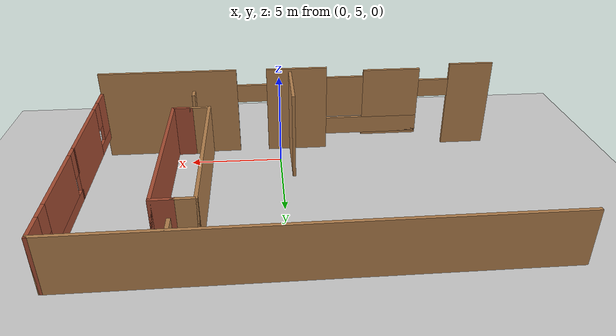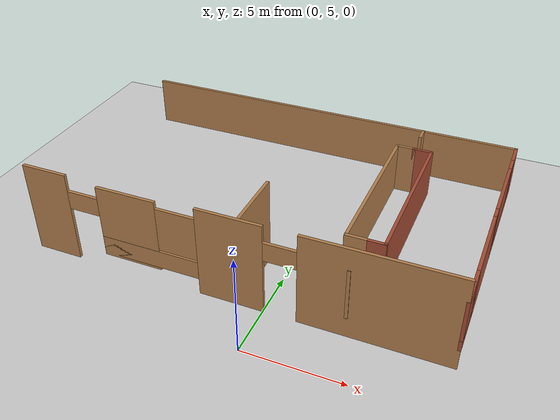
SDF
<sdf version="1.7">
 <world name="default">
  <model name="ground_plane">
   <static>1</static>
   <link name="link">
    <collision name="collision">
     <geometry><plane><normal>0 0 1</normal><size>100 100</size></plane></geometry>
     <surface><friction><ode><mu>100</mu><mu2>50</mu2></ode></friction></surface>
    </collision>
    <visual name="visual">
     <cast_shadows>0</cast_shadows>
     <geometry><plane><normal>0 0 1</normal><size>100 100</size></plane></geometry>
     <material>
      <script><uri>file://media/materials/scripts/gazebo.material</uri><name>Gazebo/Grey</name></script>
     </material>
    </visual>
   </link>
  </model>
  <model name="cafe_clone">
   <link name="Wall_14">
    <pose>9.93178 -2.98994 0 0 0 -1.56964</pose>
    <visual name="Wall_14_Visual_0">
     <pose>-0.989557 0 1.25 0 -0 0</pose>
     <geometry><box><size>3.98617 0.15 2.5</size></box></geometry>
     <material>
      <script><uri>file://media/materials/scripts/gazebo.material</uri><name>Gazebo/Bricks</name></script>
      <ambient>1 1 1 1</ambient>
      <shader type="pixel"/>
     </material>
     <meta><layer>0</layer></meta>
    </visual>
    <visual name="Wall_14_Visual_1">
     <pose>1.99308 0 0.25 0 -0 0</pose>
     <geometry><box><size>1.97911 0.15 0.5</size></box></geometry>
     <material>
      <script><uri>file://media/materials/scripts/gazebo.material</uri><name>Gazebo/Bricks</name></script>
      <ambient>1 1 1 1</ambient>
      <shader type="pixel"/>
     </material>
     <meta><layer>0</layer></meta>
    </visual>
    <visual name="Wall_14_Visual_2">
     <pose>2.35186 0 1.5 0 -0 0</pose>
     <geometry><box><size>1.26156 0.15 2</size></box></geometry>
     <material>
      <script><uri>file://media/materials/scripts/gazebo.material</uri><name>Gazebo/Bricks</name></script>
      <ambient>1 1 1 1</ambient>
      <shader type="pixel"/>
     </material>
     <meta><layer>0</layer></meta>
    </visual>
    <visual name="Wall_14_Visual_3">
     <pose>1.36231 0 1.9 0 -0 0</pose>
     <geometry><box><size>0.717555 0.15 1.2</size></box></geometry>
     <material>
      <script><uri>file://media/materials/scripts/gazebo.material</uri><name>Gazebo/Bricks</name></script>
      <ambient>1 1 1 1</ambient>
      <shader type="pixel"/>
     </material>
     <meta><layer>0</layer></meta>
    </visual>
    <collision name="Wall_14_Collision_0">
     <pose>-0.989557 0 1.25 0 -0 0</pose>
     <geometry><box><size>3.98617 0.15 2.5</size></box></geometry>
     <surface>
      <friction>
       <ode><mu>1</mu><mu2>1</mu2><fdir1>0 0 0</fdir1><slip1>0</slip1><slip2>0</slip2></ode>
       <torsional>
        <coefficient>1</coefficient>
        <patch_radius>0</patch_radius>
        <surface_radius>0</surface_radius>
        <use_patch_radius>1</use_patch_radius>
        <ode><slip>0</slip></ode>
       </torsional>
      </friction>
      <bounce><restitution_coefficient>0</restitution_coefficient><threshold>1e+06</threshold></bounce>
      <contact>
       <collide_without_contact>0</collide_without_contact>
       <collide_without_contact_bitmask>1</collide_without_contact_bitmask>
       <collide_bitmask>1</collide_bitmask>
       <ode>
        <soft_cfm>0</soft_cfm>
        <soft_erp>0.2</soft_erp>
        <kp>1e+13</kp>
        <kd>1</kd>
        <max_vel>0.01</max_vel>
        <min_depth>0</min_depth>
       </ode>
       <bullet>
        <split_impulse>1</split_impulse>
        <split_impulse_penetration_threshold>-0.01</split_impulse_penetration_threshold>
        <soft_cfm>0</soft_cfm>
        <soft_erp>0.2</soft_erp>
        <kp>1e+13</kp>
        <kd>1</kd>
       </bullet>
      </contact>
     </surface>
    </collision>
    <collision name="Wall_14_Collision_1">
     <pose>1.99308 0 0.25 0 -0 0</pose>
     <geometry><box><size>1.97911 0.15 0.5</size></box></geometry>
     <surface>
      <friction>
       <ode><mu>1</mu><mu2>1</mu2><fdir1>0 0 0</fdir1><slip1>0</slip1><slip2>0</slip2></ode>
       <torsional>
        <coefficient>1</coefficient>
        <patch_radius>0</patch_radius>
        <surface_radius>0</surface_radius>
        <use_patch_radius>1</use_patch_radius>
        <ode><slip>0</slip></ode>
       </torsional>
      </friction>
      <bounce><restitution_coefficient>0</restitution_coefficient><threshold>1e+06</threshold></bounce>
      <contact>
       <collide_without_contact>0</collide_without_contact>
       <collide_without_contact_bitmask>1</collide_without_contact_bitmask>
       <collide_bitmask>1</collide_bitmask>
       <ode>
        <soft_cfm>0</soft_cfm>
        <soft_erp>0.2</soft_erp>
        <kp>1e+13</kp>
        <kd>1</kd>
        <max_vel>0.01</max_vel>
        <min_depth>0</min_depth>
       </ode>
       <bullet>
        <split_impulse>1</split_impulse>
        <split_impulse_penetration_threshold>-0.01</split_impulse_penetration_threshold>
        <soft_cfm>0</soft_cfm>
        <soft_erp>0.2</soft_erp>
        <kp>1e+13</kp>
        <kd>1</kd>
       </bullet>
      </contact>
     </surface>
    </collision>
    <collision name="Wall_14_Collision_2">
     <pose>2.35186 0 1.5 0 -0 0</pose>
     <geometry><box><size>1.26156 0.15 2</size></box></geometry>
     <surface>
      <friction>
       <ode><mu>1</mu><mu2>1</mu2><fdir1>0 0 0</fdir1><slip1>0</slip1><slip2>0</slip2></ode>
       <torsional>
        <coefficient>1</coefficient>
        <patch_radius>0</patch_radius>
        <surface_radius>0</surface_radius>
        <use_patch_radius>1</use_patch_radius>
        <ode><slip>0</slip></ode>
       </torsional>
      </friction>
      <bounce><restitution_coefficient>0</restitution_coefficient><threshold>1e+06</threshold></bounce>
      <contact>
       <collide_without_contact>0</collide_without_contact>
       <collide_without_contact_bitmask>1</collide_without_contact_bitmask>
       <collide_bitmask>1</collide_bitmask>
       <ode>
        <soft_cfm>0</soft_cfm>
        <soft_erp>0.2</soft_erp>
        <kp>1e+13</kp>
        <kd>1</kd>
        <max_vel>0.01</max_vel>
        <min_depth>0</min_depth>
       </ode>
       <bullet>
        <split_impulse>1</split_impulse>
        <split_impulse_penetration_threshold>-0.01</split_impulse_penetration_threshold>
        <soft_cfm>0</soft_cfm>
        <soft_erp>0.2</soft_erp>
        <kp>1e+13</kp>
        <kd>1</kd>
       </bullet>
      </contact>
     </surface>
    </collision>
    <collision name="Wall_14_Collision_3">
     <pose>1.36231 0 1.9 0 -0 0</pose>
     <geometry><box><size>0.717555 0.15 1.2</size></box></geometry>
     <surface>
      <friction>
       <ode><mu>1</mu><mu2>1</mu2><fdir1>0 0 0</fdir1><slip1>0</slip1><slip2>0</slip2></ode>
       <torsional>
        <coefficient>1</coefficient>
        <patch_radius>0</patch_radius>
        <surface_radius>0</surface_radius>
        <use_patch_radius>1</use_patch_radius>
        <ode><slip>0</slip></ode>
       </torsional>
      </friction>
      <bounce><restitution_coefficient>0</restitution_coefficient><threshold>1e+06</threshold></bounce>
      <contact>
       <collide_without_contact>0</collide_without_contact>
       <collide_without_contact_bitmask>1</collide_without_contact_bitmask>
       <collide_bitmask>1</collide_bitmask>
       <ode>
        <soft_cfm>0</soft_cfm>
        <soft_erp>0.2</soft_erp>
        <kp>1e+13</kp>
        <kd>1</kd>
        <max_vel>0.01</max_vel>
        <min_depth>0</min_depth>
       </ode>
       <bullet>
        <split_impulse>1</split_impulse>
        <split_impulse_penetration_threshold>-0.01</split_impulse_penetration_threshold>
        <soft_cfm>0</soft_cfm>
        <soft_erp>0.2</soft_erp>
        <kp>1e+13</kp>
        <kd>1</kd>
       </bullet>
      </contact>
     </surface>
    </collision>
   </link>
   <link name="Wall_15">
    <pose>-0.010231 -5.89748 0 0 -0 3.14159</pose>
    <inertial>
     <inertia><ixx>0</ixx><ixy>0</ixy><ixz>0</ixz><iyy>0</iyy><iyz>0</iyz><izz>0</izz></inertia>
     <mass>0</mass>
    </inertial>
    <visual name="Wall_15_Visual_1">
     <pose>-0.152511 0 1.25 0 -0 0</pose>
     <geometry><box><size>3.07169 0.15 4.54997</size></box></geometry>
     <material>
      <script><uri>file://media/materials/scripts/gazebo.material</uri><name>Gazebo/Wood</name></script>
      <ambient>1 1 1 1</ambient>
      <shader type="pixel"/>
     </material>
     <meta><layer>0</layer></meta>
    </visual>
    <visual name="Wall_15_Visual_0">
     <pose>-6.59523 0 1.25 0 -0 0</pose>
     <geometry><box><size>6.80954 0.15 4.54997</size></box></geometry>
     <material>
      <script><uri>file://media/materials/scripts/gazebo.material</uri><name>Gazebo/Wood</name></script>
      <ambient>1 1 1 1</ambient>
      <shader type="pixel"/>
     </material>
     <meta><layer>0</layer></meta>
    </visual>
    <visual name="Wall_15_Visual_2">
     <pose>8.87248 0 1.25 0 -0 0</pose>
     <geometry><box><size>2.25504 0.15 4.54997</size></box></geometry>
     <material>
      <script><uri>file://media/materials/scripts/gazebo.material</uri><name>Gazebo/Wood</name></script>
      <ambient>1 1 1 1</ambient>
      <shader type="pixel"/>
     </material>
     <meta><layer>0</layer></meta>
    </visual>
    <visual name="Wall_15_Visual_3">
     <pose>3.7864 0 0.25 0 -0 0</pose>
     <geometry><box><size>4.80612 0.15 0.909994</size></box></geometry>
     <material>
      <script><uri>file://media/materials/scripts/gazebo.material</uri><name>Gazebo/Wood</name></script>
      <ambient>1 1 1 1</ambient>
      <shader type="pixel"/>
     </material>
     <meta><layer>0</layer></meta>
    </visual>
    <visual name="Wall_15_Visual_4">
     <pose>4.72994 0 1.5 0 -0 0</pose>
     <geometry><box><size>2.91902 0.15 3.63997</size></box></geometry>
     <material>
      <script><uri>file://media/materials/scripts/gazebo.material</uri><name>Gazebo/Wood</name></script>
      <ambient>1 1 1 1</ambient>
      <shader type="pixel"/>
     </material>
     <meta><layer>0</layer></meta>
    </visual>
    <visual name="Wall_15_Visual_5">
     <pose>2.32688 0 1.9 0 -0 0</pose>
     <geometry><box><size>1.88709 0.15 2.18398</size></box></geometry>
     <material>
      <script><uri>file://media/materials/scripts/gazebo.material</uri><name>Gazebo/Wood</name></script>
      <ambient>1 1 1 1</ambient>
      <shader type="pixel"/>
     </material>
     <meta><layer>0</layer></meta>
    </visual>
    <visual name="Wall_15_Visual_6">
     <pose>-2.43941 0 2.25 0 -0 0</pose>
     <geometry><box><size>1.5021 0.15 0.909994</size></box></geometry>
     <material>
      <script><uri>file://media/materials/scripts/gazebo.material</uri><name>Gazebo/Wood</name></script>
      <ambient>1 1 1 1</ambient>
      <shader type="pixel"/>
     </material>
     <meta><layer>0</layer></meta>
    </visual>
    <visual name="Wall_15_Visual_7">
     <pose>6.9672 0 2.25 0 -0 0</pose>
     <geometry><box><size>1.5555 0.15 0.909994</size></box></geometry>
     <material>
      <script><uri>file://media/materials/scripts/gazebo.material</uri><name>Gazebo/Wood</name></script>
      <ambient>1 1 1 1</ambient>
      <shader type="pixel"/>
     </material>
     <meta><layer>0</layer></meta>
    </visual>
    <collision name="Wall_15_Collision_0">
     <pose>-6.59523 0 1.25 0 -0 0</pose>
     <geometry><box><size>6.80954 0.15 4.54997</size></box></geometry>
     <surface>
      <friction>
       <ode><mu>1</mu><mu2>1</mu2><fdir1>0 0 0</fdir1><slip1>0</slip1><slip2>0</slip2></ode>
       <torsional>
        <coefficient>1</coefficient>
        <patch_radius>0</patch_radius>
        <surface_radius>0</surface_radius>
        <use_patch_radius>1</use_patch_radius>
        <ode><slip>0</slip></ode>
       </torsional>
      </friction>
      <bounce><restitution_coefficient>0</restitution_coefficient><threshold>1e+06</threshold></bounce>
      <contact>
       <collide_without_contact>0</collide_without_contact>
       <collide_without_contact_bitmask>1</collide_without_contact_bitmask>
       <collide_bitmask>1</collide_bitmask>
       <ode>
        <soft_cfm>0</soft_cfm>
        <soft_erp>0.2</soft_erp>
        <kp>1e+13</kp>
        <kd>1</kd>
        <max_vel>0.01</max_vel>
        <min_depth>0</min_depth>
       </ode>
       <bullet>
        <split_impulse>1</split_impulse>
        <split_impulse_penetration_threshold>-0.01</split_impulse_penetration_threshold>
        <soft_cfm>0</soft_cfm>
        <soft_erp>0.2</soft_erp>
        <kp>1e+13</kp>
        <kd>1</kd>
       </bullet>
      </contact>
     </surface>
    </collision>
    <collision name="Wall_15_Collision_1">
     <pose>-0.152511 0 1.25 0 -0 0</pose>
     <geometry><box><size>3.07169 0.15 4.54997</size></box></geometry>
     <surface>
      <friction>
       <ode><mu>1</mu><mu2>1</mu2><fdir1>0 0 0</fdir1><slip1>0</slip1><slip2>0</slip2></ode>
       <torsional>
        <coefficient>1</coefficient>
        <patch_radius>0</patch_radius>
        <surface_radius>0</surface_radius>
        <use_patch_radius>1</use_patch_radius>
        <ode><slip>0</slip></ode>
       </torsional>
      </friction>
      <bounce><restitution_coefficient>0</restitution_coefficient><threshold>1e+06</threshold></bounce>
      <contact>
       <collide_without_contact>0</collide_without_contact>
       <collide_without_contact_bitmask>1</collide_without_contact_bitmask>
       <collide_bitmask>1</collide_bitmask>
       <ode>
        <soft_cfm>0</soft_cfm>
        <soft_erp>0.2</soft_erp>
        <kp>1e+13</kp>
        <kd>1</kd>
        <max_vel>0.01</max_vel>
        <min_depth>0</min_depth>
       </ode>
       <bullet>
        <split_impulse>1</split_impulse>
        <split_impulse_penetration_threshold>-0.01</split_impulse_penetration_threshold>
        <soft_cfm>0</soft_cfm>
        <soft_erp>0.2</soft_erp>
        <kp>1e+13</kp>
        <kd>1</kd>
       </bullet>
      </contact>
     </surface>
    </collision>
    <collision name="Wall_15_Collision_2">
     <pose>8.87248 0 1.25 0 -0 0</pose>
     <geometry><box><size>2.25504 0.15 4.54997</size></box></geometry>
     <surface>
      <friction>
       <ode><mu>1</mu><mu2>1</mu2><fdir1>0 0 0</fdir1><slip1>0</slip1><slip2>0</slip2></ode>
       <torsional>
        <coefficient>1</coefficient>
        <patch_radius>0</patch_radius>
        <surface_radius>0</surface_radius>
        <use_patch_radius>1</use_patch_radius>
        <ode><slip>0</slip></ode>
       </torsional>
      </friction>
      <bounce><restitution_coefficient>0</restitution_coefficient><threshold>1e+06</threshold></bounce>
      <contact>
       <collide_without_contact>0</collide_without_contact>
       <collide_without_contact_bitmask>1</collide_without_contact_bitmask>
       <collide_bitmask>1</collide_bitmask>
       <ode>
        <soft_cfm>0</soft_cfm>
        <soft_erp>0.2</soft_erp>
        <kp>1e+13</kp>
        <kd>1</kd>
        <max_vel>0.01</max_vel>
        <min_depth>0</min_depth>
       </ode>
       <bullet>
        <split_impulse>1</split_impulse>
        <split_impulse_penetration_threshold>-0.01</split_impulse_penetration_threshold>
        <soft_cfm>0</soft_cfm>
        <soft_erp>0.2</soft_erp>
        <kp>1e+13</kp>
        <kd>1</kd>
       </bullet>
      </contact>
     </surface>
    </collision>
    <collision name="Wall_15_Collision_3">
     <pose>3.7864 0 0.25 0 -0 0</pose>
     <geometry><box><size>4.80612 0.15 0.909994</size></box></geometry>
     <surface>
      <friction>
       <ode><mu>1</mu><mu2>1</mu2><fdir1>0 0 0</fdir1><slip1>0</slip1><slip2>0</slip2></ode>
       <torsional>
        <coefficient>1</coefficient>
        <patch_radius>0</patch_radius>
        <surface_radius>0</surface_radius>
        <use_patch_radius>1</use_patch_radius>
        <ode><slip>0</slip></ode>
       </torsional>
      </friction>
      <bounce><restitution_coefficient>0</restitution_coefficient><threshold>1e+06</threshold></bounce>
      <contact>
       <collide_without_contact>0</collide_without_contact>
       <collide_without_contact_bitmask>1</collide_without_contact_bitmask>
       <collide_bitmask>1</collide_bitmask>
       <ode>
        <soft_cfm>0</soft_cfm>
        <soft_erp>0.2</soft_erp>
        <kp>1e+13</kp>
        <kd>1</kd>
        <max_vel>0.01</max_vel>
        <min_depth>0</min_depth>
       </ode>
       <bullet>
        <split_impulse>1</split_impulse>
        <split_impulse_penetration_threshold>-0.01</split_impulse_penetration_threshold>
        <soft_cfm>0</soft_cfm>
        <soft_erp>0.2</soft_erp>
        <kp>1e+13</kp>
        <kd>1</kd>
       </bullet>
      </contact>
     </surface>
    </collision>
    <collision name="Wall_15_Collision_4">
     <pose>4.72994 0 1.5 0 -0 0</pose>
     <geometry><box><size>2.91902 0.15 3.63997</size></box></geometry>
     <surface>
      <friction>
       <ode><mu>1</mu><mu2>1</mu2><fdir1>0 0 0</fdir1><slip1>0</slip1><slip2>0</slip2></ode>
       <torsional>
        <coefficient>1</coefficient>
        <patch_radius>0</patch_radius>
        <surface_radius>0</surface_radius>
        <use_patch_radius>1</use_patch_radius>
        <ode><slip>0</slip></ode>
       </torsional>
      </friction>
      <bounce><restitution_coefficient>0</restitution_coefficient><threshold>1e+06</threshold></bounce>
      <contact>
       <collide_without_contact>0</collide_without_contact>
       <collide_without_contact_bitmask>1</collide_without_contact_bitmask>
       <collide_bitmask>1</collide_bitmask>
       <ode>
        <soft_cfm>0</soft_cfm>
        <soft_erp>0.2</soft_erp>
        <kp>1e+13</kp>
        <kd>1</kd>
        <max_vel>0.01</max_vel>
        <min_depth>0</min_depth>
       </ode>
       <bullet>
        <split_impulse>1</split_impulse>
        <split_impulse_penetration_threshold>-0.01</split_impulse_penetration_threshold>
        <soft_cfm>0</soft_cfm>
        <soft_erp>0.2</soft_erp>
        <kp>1e+13</kp>
        <kd>1</kd>
       </bullet>
      </contact>
     </surface>
    </collision>
    <collision name="Wall_15_Collision_5">
     <pose>2.32688 0 1.9 0 -0 0</pose>
     <geometry><box><size>1.88709 0.15 2.18398</size></box></geometry>
     <surface>
      <friction>
       <ode><mu>1</mu><mu2>1</mu2><fdir1>0 0 0</fdir1><slip1>0</slip1><slip2>0</slip2></ode>
       <torsional>
        <coefficient>1</coefficient>
        <patch_radius>0</patch_radius>
        <surface_radius>0</surface_radius>
        <use_patch_radius>1</use_patch_radius>
        <ode><slip>0</slip></ode>
       </torsional>
      </friction>
      <bounce><restitution_coefficient>0</restitution_coefficient><threshold>1e+06</threshold></bounce>
      <contact>
       <collide_without_contact>0</collide_without_contact>
       <collide_without_contact_bitmask>1</collide_without_contact_bitmask>
       <collide_bitmask>1</collide_bitmask>
       <ode>
        <soft_cfm>0</soft_cfm>
        <soft_erp>0.2</soft_erp>
        <kp>1e+13</kp>
        <kd>1</kd>
        <max_vel>0.01</max_vel>
        <min_depth>0</min_depth>
       </ode>
       <bullet>
        <split_impulse>1</split_impulse>
        <split_impulse_penetration_threshold>-0.01</split_impulse_penetration_threshold>
        <soft_cfm>0</soft_cfm>
        <soft_erp>0.2</soft_erp>
        <kp>1e+13</kp>
        <kd>1</kd>
       </bullet>
      </contact>
     </surface>
    </collision>
    <collision name="Wall_15_Collision_6">
     <pose>-2.43941 0 2.25 0 -0 0</pose>
     <geometry><box><size>1.5021 0.15 0.909994</size></box></geometry>
     <surface>
      <friction>
       <ode><mu>1</mu><mu2>1</mu2><fdir1>0 0 0</fdir1><slip1>0</slip1><slip2>0</slip2></ode>
       <torsional>
        <coefficient>1</coefficient>
        <patch_radius>0</patch_radius>
        <surface_radius>0</surface_radius>
        <use_patch_radius>1</use_patch_radius>
        <ode><slip>0</slip></ode>
       </torsional>
      </friction>
      <bounce><restitution_coefficient>0</restitution_coefficient><threshold>1e+06</threshold></bounce>
      <contact>
       <collide_without_contact>0</collide_without_contact>
       <collide_without_contact_bitmask>1</collide_without_contact_bitmask>
       <collide_bitmask>1</collide_bitmask>
       <ode>
        <soft_cfm>0</soft_cfm>
        <soft_erp>0.2</soft_erp>
        <kp>1e+13</kp>
        <kd>1</kd>
        <max_vel>0.01</max_vel>
        <min_depth>0</min_depth>
       </ode>
       <bullet>
        <split_impulse>1</split_impulse>
        <split_impulse_penetration_threshold>-0.01</split_impulse_penetration_threshold>
        <soft_cfm>0</soft_cfm>
        <soft_erp>0.2</soft_erp>
        <kp>1e+13</kp>
        <kd>1</kd>
       </bullet>
      </contact>
     </surface>
    </collision>
    <collision name="Wall_15_Collision_7">
     <pose>6.9672 0 2.25 0 -0 0</pose>
     <geometry><box><size>1.5555 0.15 0.909994</size></box></geometry>
     <surface>
      <friction>
       <ode><mu>1</mu><mu2>1</mu2><fdir1>0 0 0</fdir1><slip1>0</slip1><slip2>0</slip2></ode>
       <torsional>
        <coefficient>1</coefficient>
        <patch_radius>0</patch_radius>
        <surface_radius>0</surface_radius>
        <use_patch_radius>1</use_patch_radius>
        <ode><slip>0</slip></ode>
       </torsional>
      </friction>
      <bounce><restitution_coefficient>0</restitution_coefficient><threshold>1e+06</threshold></bounce>
      <contact>
       <collide_without_contact>0</collide_without_contact>
       <collide_without_contact_bitmask>1</collide_without_contact_bitmask>
       <collide_bitmask>1</collide_bitmask>
       <ode>
        <soft_cfm>0</soft_cfm>
        <soft_erp>0.2</soft_erp>
        <kp>1e+13</kp>
        <kd>1</kd>
        <max_vel>0.01</max_vel>
        <min_depth>0</min_depth>
       </ode>
       <bullet>
        <split_impulse>1</split_impulse>
        <split_impulse_penetration_threshold>-0.01</split_impulse_penetration_threshold>
        <soft_cfm>0</soft_cfm>
        <soft_erp>0.2</soft_erp>
        <kp>1e+13</kp>
        <kd>1</kd>
       </bullet>
      </contact>
     </surface>
    </collision>
   </link>
   <link name="Wall_17">
    <pose>0.003408 5.91761 0 0 -0 0</pose>
    <visual name="Wall_17_Visual">
     <pose>0 0 1.25 0 -0 0</pose>
     <geometry><box><size>20 0.15 2.5</size></box></geometry>
     <material>
      <script><uri>file://media/materials/scripts/gazebo.material</uri><name>Gazebo/Wood</name></script>
      <ambient>1 1 1 1</ambient>
      <shader type="pixel"/>
     </material>
     <meta><layer>0</layer></meta>
    </visual>
    <collision name="Wall_17_Collision">
     <pose>0 0 1.25 0 -0 0</pose>
     <geometry><box><size>20 0.15 2.5</size></box></geometry>
     <surface>
      <friction>
       <ode><mu>1</mu><mu2>1</mu2><fdir1>0 0 0</fdir1><slip1>0</slip1><slip2>0</slip2></ode>
       <torsional>
        <coefficient>1</coefficient>
        <patch_radius>0</patch_radius>
        <surface_radius>0</surface_radius>
        <use_patch_radius>1</use_patch_radius>
        <ode><slip>0</slip></ode>
       </torsional>
      </friction>
      <bounce><restitution_coefficient>0</restitution_coefficient><threshold>1e+06</threshold></bounce>
      <contact>
       <collide_without_contact>0</collide_without_contact>
       <collide_without_contact_bitmask>1</collide_without_contact_bitmask>
       <collide_bitmask>1</collide_bitmask>
       <ode>
        <soft_cfm>0</soft_cfm>
        <soft_erp>0.2</soft_erp>
        <kp>1e+13</kp>
        <kd>1</kd>
        <max_vel>0.01</max_vel>
        <min_depth>0</min_depth>
       </ode>
       <bullet>
        <split_impulse>1</split_impulse>
        <split_impulse_penetration_threshold>-0.01</split_impulse_penetration_threshold>
        <soft_cfm>0</soft_cfm>
        <soft_erp>0.2</soft_erp>
        <kp>1e+13</kp>
        <kd>1</kd>
       </bullet>
      </contact>
     </surface>
    </collision>
   </link>
   <link name="Wall_18">
    <pose>9.92841 2.91761 0 0 0 -1.5708</pose>
    <visual name="Wall_18_Visual_0">
     <pose>-2.47664 0 1.25 0 -0 0</pose>
     <geometry><box><size>1.19672 0.15 2.5</size></box></geometry>
     <material>
      <script><uri>file://media/materials/scripts/gazebo.material</uri><name>Gazebo/Bricks</name></script>
      <ambient>1 1 1 1</ambient>
      <shader type="pixel"/>
     </material>
     <meta><layer>0</layer></meta>
    </visual>
    <visual name="Wall_18_Visual_1">
     <pose>0.59836 0 0.25 0 -0 0</pose>
     <geometry><box><size>4.95328 0.15 0.5</size></box></geometry>
     <material>
      <script><uri>file://media/materials/scripts/gazebo.material</uri><name>Gazebo/Bricks</name></script>
      <ambient>1 1 1 1</ambient>
      <shader type="pixel"/>
     </material>
     <meta><layer>0</layer></meta>
    </visual>
    <visual name="Wall_18_Visual_2">
     <pose>0.693485 0 1.5 0 -0 0</pose>
     <geometry><box><size>3.54353 0.15 2</size></box></geometry>
     <material>
      <script><uri>file://media/materials/scripts/gazebo.material</uri><name>Gazebo/Bricks</name></script>
      <ambient>1 1 1 1</ambient>
      <shader type="pixel"/>
     </material>
     <meta><layer>0</layer></meta>
    </visual>
    <visual name="Wall_18_Visual_3">
     <pose>0.693485 0 1.5 0 -0 0</pose>
     <geometry><box><size>3.54353 0.15 2</size></box></geometry>
     <material>
      <script><uri>file://media/materials/scripts/gazebo.material</uri><name>Gazebo/Bricks</name></script>
      <ambient>1 1 1 1</ambient>
      <shader type="pixel"/>
     </material>
     <meta><layer>0</layer></meta>
    </visual>
    <visual name="Wall_18_Visual_4">
     <pose>-1.47828 0 1.9 0 -0 0</pose>
     <geometry><box><size>0.8 0.15 1.2</size></box></geometry>
     <material>
      <script><uri>file://media/materials/scripts/gazebo.material</uri><name>Gazebo/Bricks</name></script>
      <ambient>1 1 1 1</ambient>
      <shader type="pixel"/>
     </material>
     <meta><layer>0</layer></meta>
    </visual>
    <visual name="Wall_18_Visual_5">
     <pose>2.77013 0 1.9 0 -0 0</pose>
     <geometry><box><size>0.60975 0.15 1.2</size></box></geometry>
     <material>
      <script><uri>file://media/materials/scripts/gazebo.material</uri><name>Gazebo/Bricks</name></script>
      <ambient>1 1 1 1</ambient>
      <shader type="pixel"/>
     </material>
     <meta><layer>0</layer></meta>
    </visual>
    <visual name="Wall_18_Visual_6">
     <pose>2.77013 0 1.9 0 -0 0</pose>
     <geometry><box><size>0.60975 0.15 1.2</size></box></geometry>
     <material>
      <script><uri>file://media/materials/scripts/gazebo.material</uri><name>Gazebo/Bricks</name></script>
      <ambient>1 1 1 1</ambient>
      <shader type="pixel"/>
     </material>
     <meta><layer>0</layer></meta>
    </visual>
    <collision name="Wall_18_Collision_0">
     <pose>-2.47664 0 1.25 0 -0 0</pose>
     <geometry><box><size>1.19672 0.15 2.5</size></box></geometry>
     <surface>
      <friction>
       <ode><mu>1</mu><mu2>1</mu2><fdir1>0 0 0</fdir1><slip1>0</slip1><slip2>0</slip2></ode>
       <torsional>
        <coefficient>1</coefficient>
        <patch_radius>0</patch_radius>
        <surface_radius>0</surface_radius>
        <use_patch_radius>1</use_patch_radius>
        <ode><slip>0</slip></ode>
       </torsional>
      </friction>
      <bounce><restitution_coefficient>0</restitution_coefficient><threshold>1e+06</threshold></bounce>
      <contact>
       <collide_without_contact>0</collide_without_contact>
       <collide_without_contact_bitmask>1</collide_without_contact_bitmask>
       <collide_bitmask>1</collide_bitmask>
       <ode>
        <soft_cfm>0</soft_cfm>
        <soft_erp>0.2</soft_erp>
        <kp>1e+13</kp>
        <kd>1</kd>
        <max_vel>0.01</max_vel>
        <min_depth>0</min_depth>
       </ode>
       <bullet>
        <split_impulse>1</split_impulse>
        <split_impulse_penetration_threshold>-0.01</split_impulse_penetration_threshold>
        <soft_cfm>0</soft_cfm>
        <soft_erp>0.2</soft_erp>
        <kp>1e+13</kp>
        <kd>1</kd>
       </bullet>
      </contact>
     </surface>
    </collision>
    <collision name="Wall_18_Collision_1">
     <pose>0.59836 0 0.25 0 -0 0</pose>
     <geometry><box><size>4.95328 0.15 0.5</size></box></geometry>
     <surface>
      <friction>
       <ode><mu>1</mu><mu2>1</mu2><fdir1>0 0 0</fdir1><slip1>0</slip1><slip2>0</slip2></ode>
       <torsional>
        <coefficient>1</coefficient>
        <patch_radius>0</patch_radius>
        <surface_radius>0</surface_radius>
        <use_patch_radius>1</use_patch_radius>
        <ode><slip>0</slip></ode>
       </torsional>
      </friction>
      <bounce><restitution_coefficient>0</restitution_coefficient><threshold>1e+06</threshold></bounce>
      <contact>
       <collide_without_contact>0</collide_without_contact>
       <collide_without_contact_bitmask>1</collide_without_contact_bitmask>
       <collide_bitmask>1</collide_bitmask>
       <ode>
        <soft_cfm>0</soft_cfm>
        <soft_erp>0.2</soft_erp>
        <kp>1e+13</kp>
        <kd>1</kd>
        <max_vel>0.01</max_vel>
        <min_depth>0</min_depth>
       </ode>
       <bullet>
        <split_impulse>1</split_impulse>
        <split_impulse_penetration_threshold>-0.01</split_impulse_penetration_threshold>
        <soft_cfm>0</soft_cfm>
        <soft_erp>0.2</soft_erp>
        <kp>1e+13</kp>
        <kd>1</kd>
       </bullet>
      </contact>
     </surface>
    </collision>
    <collision name="Wall_18_Collision_2">
     <pose>0.693485 0 1.5 0 -0 0</pose>
     <geometry><box><size>3.54353 0.15 2</size></box></geometry>
     <surface>
      <friction>
       <ode><mu>1</mu><mu2>1</mu2><fdir1>0 0 0</fdir1><slip1>0</slip1><slip2>0</slip2></ode>
       <torsional>
        <coefficient>1</coefficient>
        <patch_radius>0</patch_radius>
        <surface_radius>0</surface_radius>
        <use_patch_radius>1</use_patch_radius>
        <ode><slip>0</slip></ode>
       </torsional>
      </friction>
      <bounce><restitution_coefficient>0</restitution_coefficient><threshold>1e+06</threshold></bounce>
      <contact>
       <collide_without_contact>0</collide_without_contact>
       <collide_without_contact_bitmask>1</collide_without_contact_bitmask>
       <collide_bitmask>1</collide_bitmask>
       <ode>
        <soft_cfm>0</soft_cfm>
        <soft_erp>0.2</soft_erp>
        <kp>1e+13</kp>
        <kd>1</kd>
        <max_vel>0.01</max_vel>
        <min_depth>0</min_depth>
       </ode>
       <bullet>
        <split_impulse>1</split_impulse>
        <split_impulse_penetration_threshold>-0.01</split_impulse_penetration_threshold>
        <soft_cfm>0</soft_cfm>
        <soft_erp>0.2</soft_erp>
        <kp>1e+13</kp>
        <kd>1</kd>
       </bullet>
      </contact>
     </surface>
    </collision>
    <collision name="Wall_18_Collision_3">
     <pose>0.693485 0 1.5 0 -0 0</pose>
     <geometry><box><size>3.54353 0.15 2</size></box></geometry>
     <surface>
      <friction>
       <ode><mu>1</mu><mu2>1</mu2><fdir1>0 0 0</fdir1><slip1>0</slip1><slip2>0</slip2></ode>
       <torsional>
        <coefficient>1</coefficient>
        <patch_radius>0</patch_radius>
        <surface_radius>0</surface_radius>
        <use_patch_radius>1</use_patch_radius>
        <ode><slip>0</slip></ode>
       </torsional>
      </friction>
      <bounce><restitution_coefficient>0</restitution_coefficient><threshold>1e+06</threshold></bounce>
      <contact>
       <collide_without_contact>0</collide_without_contact>
       <collide_without_contact_bitmask>1</collide_without_contact_bitmask>
       <collide_bitmask>1</collide_bitmask>
       <ode>
        <soft_cfm>0</soft_cfm>
        <soft_erp>0.2</soft_erp>
        <kp>1e+13</kp>
        <kd>1</kd>
        <max_vel>0.01</max_vel>
        <min_depth>0</min_depth>
       </ode>
       <bullet>
        <split_impulse>1</split_impulse>
        <split_impulse_penetration_threshold>-0.01</split_impulse_penetration_threshold>
        <soft_cfm>0</soft_cfm>
        <soft_erp>0.2</soft_erp>
        <kp>1e+13</kp>
        <kd>1</kd>
       </bullet>
      </contact>
     </surface>
    </collision>
    <collision name="Wall_18_Collision_5">
     <pose>2.77013 0 1.9 0 -0 0</pose>
     <geometry><box><size>0.60975 0.15 1.2</size></box></geometry>
     <surface>
      <friction>
       <ode><mu>1</mu><mu2>1</mu2><fdir1>0 0 0</fdir1><slip1>0</slip1><slip2>0</slip2></ode>
       <torsional>
        <coefficient>1</coefficient>
        <patch_radius>0</patch_radius>
        <surface_radius>0</surface_radius>
        <use_patch_radius>1</use_patch_radius>
        <ode><slip>0</slip></ode>
       </torsional>
      </friction>
      <bounce><restitution_coefficient>0</restitution_coefficient><threshold>1e+06</threshold></bounce>
      <contact>
       <collide_without_contact>0</collide_without_contact>
       <collide_without_contact_bitmask>1</collide_without_contact_bitmask>
       <collide_bitmask>1</collide_bitmask>
       <ode>
        <soft_cfm>0</soft_cfm>
        <soft_erp>0.2</soft_erp>
        <kp>1e+13</kp>
        <kd>1</kd>
        <max_vel>0.01</max_vel>
        <min_depth>0</min_depth>
       </ode>
       <bullet>
        <split_impulse>1</split_impulse>
        <split_impulse_penetration_threshold>-0.01</split_impulse_penetration_threshold>
        <soft_cfm>0</soft_cfm>
        <soft_erp>0.2</soft_erp>
        <kp>1e+13</kp>
        <kd>1</kd>
       </bullet>
      </contact>
     </surface>
    </collision>
    <collision name="Wall_18_Collision_4">
     <pose>-1.47828 0 1.9 0 -0 0</pose>
     <geometry><box><size>0.8 0.15 1.2</size></box></geometry>
     <surface>
      <friction>
       <ode><mu>1</mu><mu2>1</mu2><fdir1>0 0 0</fdir1><slip1>0</slip1><slip2>0</slip2></ode>
       <torsional>
        <coefficient>1</coefficient>
        <patch_radius>0</patch_radius>
        <surface_radius>0</surface_radius>
        <use_patch_radius>1</use_patch_radius>
        <ode><slip>0</slip></ode>
       </torsional>
      </friction>
      <bounce><restitution_coefficient>0</restitution_coefficient><threshold>1e+06</threshold></bounce>
      <contact>
       <collide_without_contact>0</collide_without_contact>
       <collide_without_contact_bitmask>1</collide_without_contact_bitmask>
       <collide_bitmask>1</collide_bitmask>
       <ode>
        <soft_cfm>0</soft_cfm>
        <soft_erp>0.2</soft_erp>
        <kp>1e+13</kp>
        <kd>1</kd>
        <max_vel>0.01</max_vel>
        <min_depth>0</min_depth>
       </ode>
       <bullet>
        <split_impulse>1</split_impulse>
        <split_impulse_penetration_threshold>-0.01</split_impulse_penetration_threshold>
        <soft_cfm>0</soft_cfm>
        <soft_erp>0.2</soft_erp>
        <kp>1e+13</kp>
        <kd>1</kd>
       </bullet>
      </contact>
     </surface>
    </collision>
    <collision name="Wall_18_Collision_6">
     <pose>2.77013 0 1.9 0 -0 0</pose>
     <geometry><box><size>0.60975 0.15 1.2</size></box></geometry>
     <surface>
      <friction>
       <ode><mu>1</mu><mu2>1</mu2><fdir1>0 0 0</fdir1><slip1>0</slip1><slip2>0</slip2></ode>
       <torsional>
        <coefficient>1</coefficient>
        <patch_radius>0</patch_radius>
        <surface_radius>0</surface_radius>
        <use_patch_radius>1</use_patch_radius>
        <ode><slip>0</slip></ode>
       </torsional>
      </friction>
      <bounce><restitution_coefficient>0</restitution_coefficient><threshold>1e+06</threshold></bounce>
      <contact>
       <collide_without_contact>0</collide_without_contact>
       <collide_without_contact_bitmask>1</collide_without_contact_bitmask>
       <collide_bitmask>1</collide_bitmask>
       <ode>
        <soft_cfm>0</soft_cfm>
        <soft_erp>0.2</soft_erp>
        <kp>1e+13</kp>
        <kd>1</kd>
        <max_vel>0.01</max_vel>
        <min_depth>0</min_depth>
       </ode>
       <bullet>
        <split_impulse>1</split_impulse>
        <split_impulse_penetration_threshold>-0.01</split_impulse_penetration_threshold>
        <soft_cfm>0</soft_cfm>
        <soft_erp>0.2</soft_erp>
        <kp>1e+13</kp>
        <kd>1</kd>
       </bullet>
      </contact>
     </surface>
    </collision>
   </link>
   <link name="Wall_22">
    <pose>5.35251 -5.63541 0 0 -0 1.5708</pose>
    <visual name="Wall_22_Visual">
     <pose>0 0 1.25 0 -0 0</pose>
     <geometry><box><size>0.75 0.15 2.5</size></box></geometry>
     <material>
      <script><uri>file://media/materials/scripts/gazebo.material</uri><name>Gazebo/Wood</name></script>
      <ambient>1 1 1 1</ambient>
      <shader type="pixel"/>
     </material>
     <meta><layer>0</layer></meta>
    </visual>
    <collision name="Wall_22_Collision">
     <pose>0 0 1.25 0 -0 0</pose>
     <geometry><box><size>0.75 0.15 2.5</size></box></geometry>
     <surface>
      <friction>
       <ode><mu>1</mu><mu2>1</mu2><fdir1>0 0 0</fdir1><slip1>0</slip1><slip2>0</slip2></ode>
       <torsional>
        <coefficient>1</coefficient>
        <patch_radius>0</patch_radius>
        <surface_radius>0</surface_radius>
        <use_patch_radius>1</use_patch_radius>
        <ode><slip>0</slip></ode>
       </torsional>
      </friction>
      <bounce><restitution_coefficient>0</restitution_coefficient><threshold>1e+06</threshold></bounce>
      <contact>
       <collide_without_contact>0</collide_without_contact>
       <collide_without_contact_bitmask>1</collide_without_contact_bitmask>
       <collide_bitmask>1</collide_bitmask>
       <ode>
        <soft_cfm>0</soft_cfm>
        <soft_erp>0.2</soft_erp>
        <kp>1e+13</kp>
        <kd>1</kd>
        <max_vel>0.01</max_vel>
        <min_depth>0</min_depth>
       </ode>
       <bullet>
        <split_impulse>1</split_impulse>
        <split_impulse_penetration_threshold>-0.01</split_impulse_penetration_threshold>
        <soft_cfm>0</soft_cfm>
        <soft_erp>0.2</soft_erp>
        <kp>1e+13</kp>
        <kd>1</kd>
       </bullet>
      </contact>
     </surface>
    </collision>
   </link>
   <link name="Wall_24">
    <pose>5.31682 5.61552 0 0 0 -1.5708</pose>
    <visual name="Wall_24_Visual">
     <pose>0 0 1.25 0 -0 0</pose>
     <geometry><box><size>0.75 0.15 2.5</size></box></geometry>
     <material>
      <script><uri>file://media/materials/scripts/gazebo.material</uri><name>Gazebo/Wood</name></script>
      <ambient>1 1 1 1</ambient>
      <shader type="pixel"/>
     </material>
     <meta><layer>0</layer></meta>
    </visual>
    <collision name="Wall_24_Collision">
     <pose>0 0 1.25 0 -0 0</pose>
     <geometry><box><size>0.75 0.15 2.5</size></box></geometry>
     <surface>
      <friction>
       <ode><mu>1</mu><mu2>1</mu2><fdir1>0 0 0</fdir1><slip1>0</slip1><slip2>0</slip2></ode>
       <torsional>
        <coefficient>1</coefficient>
        <patch_radius>0</patch_radius>
        <surface_radius>0</surface_radius>
        <use_patch_radius>1</use_patch_radius>
        <ode><slip>0</slip></ode>
       </torsional>
      </friction>
      <bounce><restitution_coefficient>0</restitution_coefficient><threshold>1e+06</threshold></bounce>
      <contact>
       <collide_without_contact>0</collide_without_contact>
       <collide_without_contact_bitmask>1</collide_without_contact_bitmask>
       <collide_bitmask>1</collide_bitmask>
       <ode>
        <soft_cfm>0</soft_cfm>
        <soft_erp>0.2</soft_erp>
        <kp>1e+13</kp>
        <kd>1</kd>
        <max_vel>0.01</max_vel>
        <min_depth>0</min_depth>
       </ode>
       <bullet>
        <split_impulse>1</split_impulse>
        <split_impulse_penetration_threshold>-0.01</split_impulse_penetration_threshold>
        <soft_cfm>0</soft_cfm>
        <soft_erp>0.2</soft_erp>
        <kp>1e+13</kp>
        <kd>1</kd>
       </bullet>
      </contact>
     </surface>
    </collision>
   </link>
   <link name="Wall_48">
    <pose>0.491486 -4.33151 0 0 -0 1.5708</pose>
    <inertial>
     <inertia><ixx>0</ixx><ixy>0</ixy><ixz>0</ixz><iyy>0</iyy><iyz>0</iyz><izz>0</izz></inertia>
     <mass>0</mass>
    </inertial>
    <visual name="Wall_48_Visual">
     <pose>0 0 1.25 0 -0 0</pose>
     <geometry><box><size>3.25 0.15 4.29503</size></box></geometry>
     <material>
      <script><uri>file://media/materials/scripts/gazebo.material</uri><name>Gazebo/Wood</name></script>
      <ambient>1 1 1 1</ambient>
      <shader type="pixel"/>
     </material>
     <meta><layer>0</layer></meta>
    </visual>
    <collision name="Wall_48_Collision">
     <pose>0 0 1.25 0 -0 0</pose>
     <geometry><box><size>3.25 0.15 4.29503</size></box></geometry>
     <surface>
      <friction>
       <ode><mu>1</mu><mu2>1</mu2><fdir1>0 0 0</fdir1><slip1>0</slip1><slip2>0</slip2></ode>
       <torsional>
        <coefficient>1</coefficient>
        <patch_radius>0</patch_radius>
        <surface_radius>0</surface_radius>
        <use_patch_radius>1</use_patch_radius>
        <ode><slip>0</slip></ode>
       </torsional>
      </friction>
      <bounce><restitution_coefficient>0</restitution_coefficient><threshold>1e+06</threshold></bounce>
      <contact>
       <collide_without_contact>0</collide_without_contact>
       <collide_without_contact_bitmask>1</collide_without_contact_bitmask>
       <collide_bitmask>1</collide_bitmask>
       <ode>
        <soft_cfm>0</soft_cfm>
        <soft_erp>0.2</soft_erp>
        <kp>1e+13</kp>
        <kd>1</kd>
        <max_vel>0.01</max_vel>
        <min_depth>0</min_depth>
       </ode>
       <bullet>
        <split_impulse>1</split_impulse>
        <split_impulse_penetration_threshold>-0.01</split_impulse_penetration_threshold>
        <soft_cfm>0</soft_cfm>
        <soft_erp>0.2</soft_erp>
        <kp>1e+13</kp>
        <kd>1</kd>
       </bullet>
      </contact>
     </surface>
    </collision>
   </link>
   <link name="Wall_55">
    <pose>4.9079 4.0236 0 0 -0 3.14159</pose>
    <visual name="Wall_55_Visual">
     <pose>0 0 1.25 0 -0 0</pose>
     <geometry><box><size>1 0.15 2.5</size></box></geometry>
     <material>
      <script><uri>file://media/materials/scripts/gazebo.material</uri><name>Gazebo/Wood</name></script>
      <ambient>1 1 1 1</ambient>
      <shader type="pixel"/>
     </material>
     <meta><layer>0</layer></meta>
    </visual>
    <collision name="Wall_55_Collision">
     <pose>0 0 1.25 0 -0 0</pose>
     <geometry><box><size>1 0.15 2.5</size></box></geometry>
     <surface>
      <friction>
       <ode><mu>1</mu><mu2>1</mu2><fdir1>0 0 0</fdir1><slip1>0</slip1><slip2>0</slip2></ode>
       <torsional>
        <coefficient>1</coefficient>
        <patch_radius>0</patch_radius>
        <surface_radius>0</surface_radius>
        <use_patch_radius>1</use_patch_radius>
        <ode><slip>0</slip></ode>
       </torsional>
      </friction>
      <bounce><restitution_coefficient>0</restitution_coefficient><threshold>1e+06</threshold></bounce>
      <contact>
       <collide_without_contact>0</collide_without_contact>
       <collide_without_contact_bitmask>1</collide_without_contact_bitmask>
       <collide_bitmask>1</collide_bitmask>
       <ode>
        <soft_cfm>0</soft_cfm>
        <soft_erp>0.2</soft_erp>
        <kp>1e+13</kp>
        <kd>1</kd>
        <max_vel>0.01</max_vel>
        <min_depth>0</min_depth>
       </ode>
       <bullet>
        <split_impulse>1</split_impulse>
        <split_impulse_penetration_threshold>-0.01</split_impulse_penetration_threshold>
        <soft_cfm>0</soft_cfm>
        <soft_erp>0.2</soft_erp>
        <kp>1e+13</kp>
        <kd>1</kd>
       </bullet>
      </contact>
     </surface>
    </collision>
   </link>
   <link name="Wall_56">
    <pose>4.4829 0.098601 0 0 0 -1.5708</pose>
    <visual name="Wall_56_Visual">
     <pose>0 0 1.25 0 -0 0</pose>
     <geometry><box><size>8 0.15 2.5</size></box></geometry>
     <material>
      <script><uri>file://media/materials/scripts/gazebo.material</uri><name>Gazebo/Wood</name></script>
      <ambient>1 1 1 1</ambient>
      <shader type="pixel"/>
     </material>
     <meta><layer>0</layer></meta>
    </visual>
    <collision name="Wall_56_Collision">
     <pose>0 0 1.25 0 -0 0</pose>
     <geometry><box><size>8 0.15 2.5</size></box></geometry>
     <surface>
      <friction>
       <ode><mu>1</mu><mu2>1</mu2><fdir1>0 0 0</fdir1><slip1>0</slip1><slip2>0</slip2></ode>
       <torsional>
        <coefficient>1</coefficient>
        <patch_radius>0</patch_radius>
        <surface_radius>0</surface_radius>
        <use_patch_radius>1</use_patch_radius>
        <ode><slip>0</slip></ode>
       </torsional>
      </friction>
      <bounce><restitution_coefficient>0</restitution_coefficient><threshold>1e+06</threshold></bounce>
      <contact>
       <collide_without_contact>0</collide_without_contact>
       <collide_without_contact_bitmask>1</collide_without_contact_bitmask>
       <collide_bitmask>1</collide_bitmask>
       <ode>
        <soft_cfm>0</soft_cfm>
        <soft_erp>0.2</soft_erp>
        <kp>1e+13</kp>
        <kd>1</kd>
        <max_vel>0.01</max_vel>
        <min_depth>0</min_depth>
       </ode>
       <bullet>
        <split_impulse>1</split_impulse>
        <split_impulse_penetration_threshold>-0.01</split_impulse_penetration_threshold>
        <soft_cfm>0</soft_cfm>
        <soft_erp>0.2</soft_erp>
        <kp>1e+13</kp>
        <kd>1</kd>
       </bullet>
      </contact>
     </surface>
    </collision>
   </link>
   <link name="Wall_59">
    <pose>4.9079 -3.8264 0 0 -0 0</pose>
    <visual name="Wall_59_Visual">
     <pose>0 0 1.25 0 -0 0</pose>
     <geometry><box><size>1 0.15 2.5</size></box></geometry>
     <material>
      <script><uri>file://media/materials/scripts/gazebo.material</uri><name>Gazebo/Wood</name></script>
      <ambient>1 1 1 1</ambient>
      <shader type="pixel"/>
     </material>
     <meta><layer>0</layer></meta>
    </visual>
    <collision name="Wall_59_Collision">
     <pose>0 0 1.25 0 -0 0</pose>
     <geometry><box><size>1 0.15 2.5</size></box></geometry>
     <surface>
      <friction>
       <ode><mu>1</mu><mu2>1</mu2><fdir1>0 0 0</fdir1><slip1>0</slip1><slip2>0</slip2></ode>
       <torsional>
        <coefficient>1</coefficient>
        <patch_radius>0</patch_radius>
        <surface_radius>0</surface_radius>
        <use_patch_radius>1</use_patch_radius>
        <ode><slip>0</slip></ode>
       </torsional>
      </friction>
      <bounce><restitution_coefficient>0</restitution_coefficient><threshold>1e+06</threshold></bounce>
      <contact>
       <collide_without_contact>0</collide_without_contact>
       <collide_without_contact_bitmask>1</collide_without_contact_bitmask>
       <collide_bitmask>1</collide_bitmask>
       <ode>
        <soft_cfm>0</soft_cfm>
        <soft_erp>0.2</soft_erp>
        <kp>1e+13</kp>
        <kd>1</kd>
        <max_vel>0.01</max_vel>
        <min_depth>0</min_depth>
       </ode>
       <bullet>
        <split_impulse>1</split_impulse>
        <split_impulse_penetration_threshold>-0.01</split_impulse_penetration_threshold>
        <soft_cfm>0</soft_cfm>
        <soft_erp>0.2</soft_erp>
        <kp>1e+13</kp>
        <kd>1</kd>
       </bullet>
      </contact>
     </surface>
    </collision>
   </link>
   <link name="Wall_61">
    <pose>5.7579 4.0236 0 0 -0 0</pose>
    <visual name="Wall_61_Visual">
     <pose>0 0 1.25 0 -0 0</pose>
     <geometry><box><size>1 0.15 2.5</size></box></geometry>
     <material>
      <script><uri>file://media/materials/scripts/gazebo.material</uri><name>Gazebo/Bricks</name></script>
      <ambient>1 1 1 1</ambient>
      <shader type="pixel"/>
     </material>
     <meta><layer>0</layer></meta>
    </visual>
    <collision name="Wall_61_Collision">
     <pose>0 0 1.25 0 -0 0</pose>
     <geometry><box><size>1 0.15 2.5</size></box></geometry>
     <surface>
      <friction>
       <ode><mu>1</mu><mu2>1</mu2><fdir1>0 0 0</fdir1><slip1>0</slip1><slip2>0</slip2></ode>
       <torsional>
        <coefficient>1</coefficient>
        <patch_radius>0</patch_radius>
        <surface_radius>0</surface_radius>
        <use_patch_radius>1</use_patch_radius>
        <ode><slip>0</slip></ode>
       </torsional>
      </friction>
      <bounce><restitution_coefficient>0</restitution_coefficient><threshold>1e+06</threshold></bounce>
      <contact>
       <collide_without_contact>0</collide_without_contact>
       <collide_without_contact_bitmask>1</collide_without_contact_bitmask>
       <collide_bitmask>1</collide_bitmask>
       <ode>
        <soft_cfm>0</soft_cfm>
        <soft_erp>0.2</soft_erp>
        <kp>1e+13</kp>
        <kd>1</kd>
        <max_vel>0.01</max_vel>
        <min_depth>0</min_depth>
       </ode>
       <bullet>
        <split_impulse>1</split_impulse>
        <split_impulse_penetration_threshold>-0.01</split_impulse_penetration_threshold>
        <soft_cfm>0</soft_cfm>
        <soft_erp>0.2</soft_erp>
        <kp>1e+13</kp>
        <kd>1</kd>
       </bullet>
      </contact>
     </surface>
    </collision>
   </link>
   <link name="Wall_62">
    <pose>6.1829 0.098601 0 0 0 -1.5708</pose>
    <visual name="Wall_62_Visual">
     <pose>0 0 1.25 0 -0 0</pose>
     <geometry><box><size>8 0.15 2.5</size></box></geometry>
     <material>
      <script><uri>file://media/materials/scripts/gazebo.material</uri><name>Gazebo/Bricks</name></script>
      <ambient>1 1 1 1</ambient>
      <shader type="pixel"/>
     </material>
     <meta><layer>0</layer></meta>
    </visual>
    <collision name="Wall_62_Collision">
     <pose>0 0 1.25 0 -0 0</pose>
     <geometry><box><size>8 0.15 2.5</size></box></geometry>
     <surface>
      <friction>
       <ode><mu>1</mu><mu2>1</mu2><fdir1>0 0 0</fdir1><slip1>0</slip1><slip2>0</slip2></ode>
       <torsional>
        <coefficient>1</coefficient>
        <patch_radius>0</patch_radius>
        <surface_radius>0</surface_radius>
        <use_patch_radius>1</use_patch_radius>
        <ode><slip>0</slip></ode>
       </torsional>
      </friction>
      <bounce><restitution_coefficient>0</restitution_coefficient><threshold>1e+06</threshold></bounce>
      <contact>
       <collide_without_contact>0</collide_without_contact>
       <collide_without_contact_bitmask>1</collide_without_contact_bitmask>
       <collide_bitmask>1</collide_bitmask>
       <ode>
        <soft_cfm>0</soft_cfm>
        <soft_erp>0.2</soft_erp>
        <kp>1e+13</kp>
        <kd>1</kd>
        <max_vel>0.01</max_vel>
        <min_depth>0</min_depth>
       </ode>
       <bullet>
        <split_impulse>1</split_impulse>
        <split_impulse_penetration_threshold>-0.01</split_impulse_penetration_threshold>
        <soft_cfm>0</soft_cfm>
        <soft_erp>0.2</soft_erp>
        <kp>1e+13</kp>
        <kd>1</kd>
       </bullet>
      </contact>
     </surface>
    </collision>
   </link>
   <link name="Wall_63">
    <pose>5.7579 -3.8264 0 0 -0 3.14159</pose>
    <visual name="Wall_63_Visual">
     <pose>0 0 1.25 0 -0 0</pose>
     <geometry><box><size>1 0.15 2.5</size></box></geometry>
     <material>
      <script><uri>file://media/materials/scripts/gazebo.material</uri><name>Gazebo/Bricks</name></script>
      <ambient>1 1 1 1</ambient>
      <shader type="pixel"/>
     </material>
     <meta><layer>0</layer></meta>
    </visual>
    <collision name="Wall_63_Collision">
     <pose>0 0 1.25 0 -0 0</pose>
     <geometry><box><size>1 0.15 2.5</size></box></geometry>
     <surface>
      <friction>
       <ode><mu>1</mu><mu2>1</mu2><fdir1>0 0 0</fdir1><slip1>0</slip1><slip2>0</slip2></ode>
       <torsional>
        <coefficient>1</coefficient>
        <patch_radius>0</patch_radius>
        <surface_radius>0</surface_radius>
        <use_patch_radius>1</use_patch_radius>
        <ode><slip>0</slip></ode>
       </torsional>
      </friction>
      <bounce><restitution_coefficient>0</restitution_coefficient><threshold>1e+06</threshold></bounce>
      <contact>
       <collide_without_contact>0</collide_without_contact>
       <collide_without_contact_bitmask>1</collide_without_contact_bitmask>
       <collide_bitmask>1</collide_bitmask>
       <ode>
        <soft_cfm>0</soft_cfm>
        <soft_erp>0.2</soft_erp>
        <kp>1e+13</kp>
        <kd>1</kd>
        <max_vel>0.01</max_vel>
        <min_depth>0</min_depth>
       </ode>
       <bullet>
        <split_impulse>1</split_impulse>
        <split_impulse_penetration_threshold>-0.01</split_impulse_penetration_threshold>
        <soft_cfm>0</soft_cfm>
        <soft_erp>0.2</soft_erp>
        <kp>1e+13</kp>
        <kd>1</kd>
       </bullet>
      </contact>
     </surface>
    </collision>
   </link>
   <static>1</static>
   <pose>-1.00209 12.187 2.48354 0 -0 0</pose>
  </model>
 </world>
</sdf>
